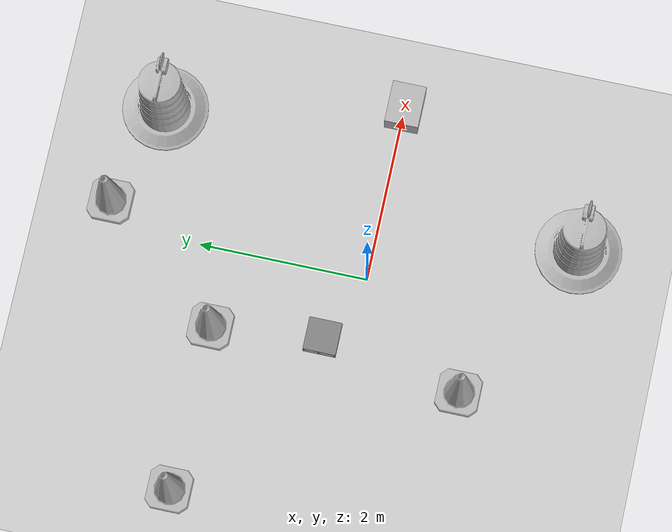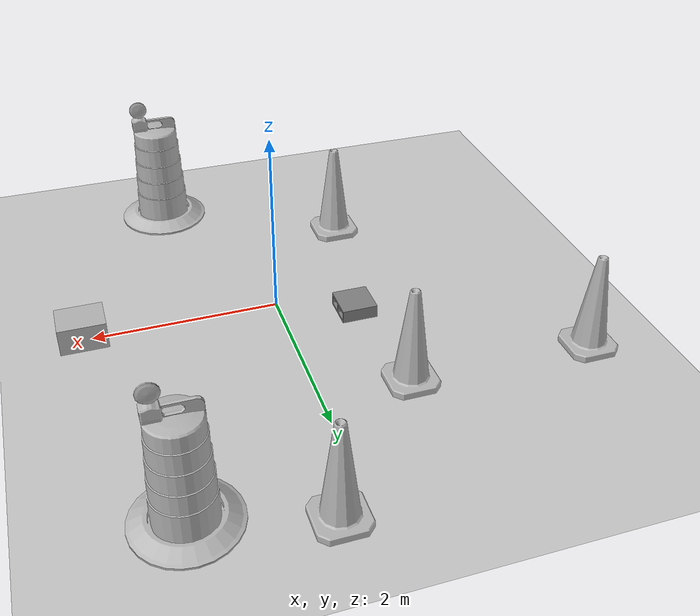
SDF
<sdf version="1.7">
 <world name="default">
  <light name="sun" type="directional">
   <pose>0 0 10 0 -0 0</pose>
   <diffuse>0.8 0.8 0.8 1</diffuse>
   <specular>0.2 0.2 0.2 1</specular>
   <attenuation>
    <range>1000</range>
    <constant>0.9</constant>
    <linear>0.01</linear>
    <quadratic>0.001</quadratic>
   </attenuation>
   <direction>-0.5 0.1 -0.9</direction>
   <spot><inner_angle>0</inner_angle><outer_angle>0</outer_angle><falloff>0</falloff></spot>
  </light>
  <model name="ground_plane">
   <static>1</static>
   <link name="link">
    <collision name="collision">
     <geometry><plane><normal>0 0 1</normal><size>100 100</size></plane></geometry>
     <surface>
      <contact><collide_bitmask>65535</collide_bitmask></contact>
      <friction><ode><mu>100</mu><mu2>50</mu2></ode></friction>
     </surface>
    </collision>
    <visual name="visual">
     <cast_shadows>0</cast_shadows>
     <geometry><plane><normal>0 0 1</normal><size>100 100</size></plane></geometry>
     <material>
      <script><uri>file://media/materials/scripts/gazebo.material</uri><name>Gazebo/Grey</name></script>
     </material>
    </visual>
   </link>
  </model>
  <gravity>0 0 -9.8</gravity>
  <magnetic_field>6e-06 2.3e-05 -4.2e-05</magnetic_field>
  <atmosphere type="adiabatic"/>
  <physics type="ode">
   <max_step_size>0.001</max_step_size>
   <real_time_factor>1</real_time_factor>
   <real_time_update_rate>1000</real_time_update_rate>
  </physics>
  <scene><ambient>0.4 0.4 0.4 1</ambient><background>0.7 0.7 0.7 1</background><shadows>1</shadows></scene>
  <audio><device>default</device></audio>
  <spherical_coordinates>
   <surface_model>EARTH_WGS84</surface_model>
   <latitude_deg>0</latitude_deg>
   <longitude_deg>0</longitude_deg>
   <elevation>0</elevation>
   <heading_deg>0</heading_deg>
  </spherical_coordinates>
  <model name="cardboard_box">
   <pose>2.08626 -0.00934 0.149 0 -0 0</pose>
   <link name="link">
    <inertial>
     <mass>2</mass>
     <inertia>
      <ixx>0.0416667</ixx>
      <ixy>0</ixy>
      <ixz>0</ixz>
      <iyy>0.0566667</iyy>
      <iyz>0</iyz>
      <izz>0.0683333</izz>
     </inertia>
    </inertial>
    <collision name="collision">
     <geometry><box><size>0.5 0.4 0.3</size></box></geometry>
     <surface>
      <friction><ode><mu>1</mu><mu2>1</mu2></ode></friction>
      <contact><ode><kp>1e+07</kp><kd>1</kd><min_depth>0.001</min_depth><max_vel>0.1</max_vel></ode></contact>
     </surface>
    </collision>
    <visual name="visual">
     <pose>0 0 -0.15 0 -0 0</pose>
     <geometry>
      <mesh><uri>model://cardboard_box/meshes/cardboard_box.dae</uri><scale>1.25932 1.00745 0.755591</scale></mesh>
     </geometry>
    </visual>
   </link>
  </model>
  <model name="cinder_block_wide">
   <link name="link">
    <inertial>
     <pose>0 0 0.071438 0 -0 0</pose>
     <mass>5</mass>
     <inertia>
      <ixx>0.0681466</ixx>
      <ixy>0</ixy>
      <iyy>0.0681466</iyy>
      <ixz>0</ixz>
      <iyz>0</iyz>
      <izz>0.124808</izz>
     </inertia>
    </inertial>
    <visual name="visual">
     <geometry><mesh><uri>model://cinder_block_wide/meshes/cinder_block_wide.dae</uri></mesh></geometry>
    </visual>
    <collision name="top">
     <pose>0 0 0.130175 0 -0 0</pose>
     <geometry><box><size>0.387354 0.387354 0.0254</size></box></geometry>
     <surface>
      <contact><ode><max_vel>0.1</max_vel><min_depth>0.001</min_depth></ode></contact>
      <friction><ode><mu>1</mu><mu2>1</mu2></ode></friction>
     </surface>
    </collision>
    <collision name="bottom">
     <pose>0 0 0.0127 0 -0 0</pose>
     <geometry><box><size>0.387354 0.387354 0.0254</size></box></geometry>
     <surface>
      <contact><ode><max_vel>0.1</max_vel><min_depth>0.001</min_depth></ode></contact>
      <friction><ode><mu>1</mu><mu2>1</mu2></ode></friction>
     </surface>
    </collision>
    <collision name="left">
     <pose>0 -0.183355 0.071438 0 -0 0</pose>
     <geometry><box><size>0.387354 0.020643 0.092075</size></box></geometry>
     <surface>
      <contact><ode><max_vel>0.1</max_vel><min_depth>0.001</min_depth></ode></contact>
      <friction><ode><mu>1</mu><mu2>1</mu2></ode></friction>
     </surface>
    </collision>
    <collision name="right">
     <pose>0 0.183355 0.071438 0 -0 0</pose>
     <geometry><box><size>0.387354 0.020643 0.092075</size></box></geometry>
     <surface>
      <contact><ode><max_vel>0.1</max_vel><min_depth>0.001</min_depth></ode></contact>
      <friction><ode><mu>1</mu><mu2>1</mu2></ode></friction>
     </surface>
    </collision>
    <collision name="middle">
     <pose>0 0 0.071438 0 -0 0</pose>
     <geometry><box><size>0.387354 0.0254 0.092075</size></box></geometry>
     <surface>
      <contact><ode><max_vel>0.1</max_vel><min_depth>0.001</min_depth></ode></contact>
      <friction><ode><mu>1</mu><mu2>1</mu2></ode></friction>
     </surface>
    </collision>
   </link>
   <pose>-0.787408 0.359083 -1e-05 0 -0 0</pose>
  </model>
  <model name="Construction Cone">
   <link name="link">
    <collision name="collision">
     <geometry>
      <mesh><scale>10 10 10</scale><uri>model://construction_cone/meshes/construction_cone.dae</uri></mesh>
     </geometry>
    </collision>
    <visual name="visual">
     <geometry>
      <mesh><scale>10 10 10</scale><uri>model://construction_cone/meshes/construction_cone.dae</uri></mesh>
     </geometry>
    </visual>
    <inertial>
     <inertia><ixx>1</ixx><ixy>0</ixy><ixz>0</ixz><iyy>1</iyy><iyz>0</iyz><izz>1</izz></inertia>
     <mass>1</mass>
    </inertial>
   </link>
   <pose>-1.09052 -1.31477 -0 1e-06 -0 0</pose>
  </model>
  <model name="Construction Barrel">
   <link name="link">
    <inertial>
     <pose>0 0 0.4 0 -0 0</pose>
     <mass>500</mass>
     <inertia><ixx>51.2096</ixx><iyy>51.2096</iyy><izz>25</izz><ixy>0</ixy><ixz>0</ixz><iyz>0</iyz></inertia>
    </inertial>
    <collision name="collision">
     <geometry><mesh><uri>model://construction_barrel/meshes/construction_barrel.dae</uri></mesh></geometry>
    </collision>
    <visual name="visual">
     <geometry><mesh><uri>model://construction_barrel/meshes/construction_barrel.dae</uri></mesh></geometry>
    </visual>
   </link>
   <pose>1.5128 2.75301 -0 0 -0 -1e-05</pose>
  </model>
  <model name="Construction Barrel_0">
   <link name="link">
    <inertial>
     <pose>0 0 0.4 0 -0 0</pose>
     <mass>500</mass>
     <inertia><ixx>51.2096</ixx><iyy>51.2096</iyy><izz>25</izz><ixy>0</ixy><ixz>0</ixz><iyz>0</iyz></inertia>
    </inertial>
    <collision name="collision">
     <geometry><mesh><uri>model://construction_barrel/meshes/construction_barrel.dae</uri></mesh></geometry>
    </collision>
    <visual name="visual">
     <geometry><mesh><uri>model://construction_barrel/meshes/construction_barrel.dae</uri></mesh></geometry>
    </visual>
   </link>
   <pose>0.845761 -2.33887 -1e-06 3e-06 7e-06 -9e-06</pose>
  </model>
  <model name="Construction Cone_0">
   <link name="link">
    <collision name="collision">
     <geometry>
      <mesh><scale>10 10 10</scale><uri>model://construction_cone/meshes/construction_cone.dae</uri></mesh>
     </geometry>
    </collision>
    <visual name="visual">
     <geometry>
      <mesh><scale>10 10 10</scale><uri>model://construction_cone/meshes/construction_cone.dae</uri></mesh>
     </geometry>
    </visual>
    <inertial>
     <inertia><ixx>1</ixx><ixy>0</ixy><ixz>0</ixz><iyy>1</iyy><iyz>0</iyz><izz>1</izz></inertia>
     <mass>1</mass>
    </inertial>
   </link>
   <pose>-0.930501 1.65812 -0 0 -1e-06 0</pose>
  </model>
  <model name="Construction Cone_1">
   <link name="link">
    <collision name="collision">
     <geometry>
      <mesh><scale>10 10 10</scale><uri>model://construction_cone/meshes/construction_cone.dae</uri></mesh>
     </geometry>
    </collision>
    <visual name="visual">
     <geometry>
      <mesh><scale>10 10 10</scale><uri>model://construction_cone/meshes/construction_cone.dae</uri></mesh>
     </geometry>
    </visual>
    <inertial>
     <inertia><ixx>1</ixx><ixy>0</ixy><ixz>0</ixz><iyy>1</iyy><iyz>0</iyz><izz>1</izz></inertia>
     <mass>1</mass>
    </inertial>
   </link>
   <pose>0.287102 3.12736 -0 0 -1e-06 0</pose>
  </model>
  <model name="Construction Cone_2">
   <link name="link">
    <collision name="collision">
     <geometry>
      <mesh><scale>10 10 10</scale><uri>model://construction_cone/meshes/construction_cone.dae</uri></mesh>
     </geometry>
    </collision>
    <visual name="visual">
     <geometry>
      <mesh><scale>10 10 10</scale><uri>model://construction_cone/meshes/construction_cone.dae</uri></mesh>
     </geometry>
    </visual>
    <inertial>
     <inertia><ixx>1</ixx><ixy>0</ixy><ixz>0</ixz><iyy>1</iyy><iyz>0</iyz><izz>1</izz></inertia>
     <mass>1</mass>
    </inertial>
   </link>
   <pose>-2.88831 1.69912 -0 0 -0 0</pose>
  </model>
 </world>
</sdf>
